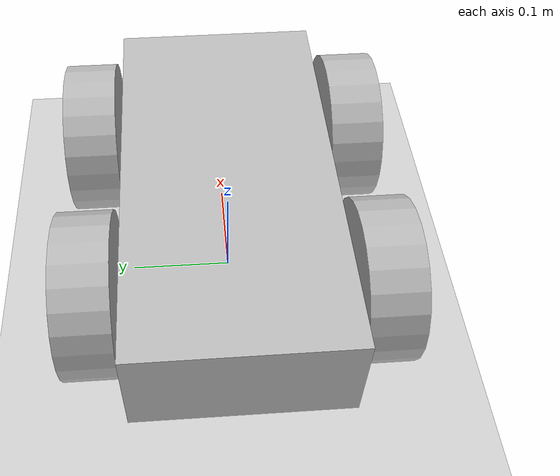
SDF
<?xml version="1.0" ?>
<sdf version="1.4">
<world name="mirobot">
	<light name='sun' type='directional'>
		<cast_shadows>1</cast_shadows>
		<pose>0 0 10 0 -0 0</pose>
		<diffuse>0.8 0.8 0.8 1</diffuse>
		<specular>0.2 0.2 0.2 1</specular>
		<attenuation>
			<range>1000</range>
			<constant>0.9</constant>
			<linear>0.01</linear>
			<quadratic>0.001</quadratic>
		</attenuation>
		<direction>-0.5 0.1 -0.9</direction>
	</light>

	<!-- Ground Plane -->
	<include>
		<uri>model://ground_plane</uri>
	</include>

	<!--    ROVER    -->
	<model name="rover">
		<static>false</static>

		<link name='chassis'>
			<pose>0 0 .1 0 0 0</pose>

			<collision name='collision'>
				<geometry>
					<box>
						<size>.4 .2 .1</size>
					</box>
				</geometry>
			</collision>

			<visual name='visual'>
				<geometry>
					<box>
						<size>.4 .2 .1</size>
					</box>
				</geometry>
			</visual>

			<sensor name='my_contact' type='contact'>
				<contact>
					<collision>collision</collision>
				</contact>
			</sensor>
		</link>

		<link name="front_left_wheel">
			<pose>0.1 0.13 0.1 0 1.5707 1.5707</pose>
			<collision name="collision">
				<geometry>
					<cylinder>
						<radius>.075</radius>
						<length>.05</length>
					</cylinder>
				</geometry>
			</collision>
			<visual name="visual">
				<geometry>
					<cylinder>
						<radius>.075</radius>
						<length>.05</length>
					</cylinder>
				</geometry>
			</visual>
		</link>

		<link name="front_right_wheel">
			<pose>0.1 -0.13 0.1 0 1.5707 1.5707</pose>
			<collision name="collision">
				<geometry>
					<cylinder>
						<radius>.075</radius>
						<length>.05</length>
					</cylinder>
				</geometry>
			</collision>
			<visual name="visual">
				<geometry>
					<cylinder>
						<radius>.075</radius>
						<length>.05</length>
					</cylinder>
				</geometry>
			</visual>
		</link>

		<link name="back_left_wheel">
			<pose>-0.1 0.13 0.1 0 1.5707 1.5707</pose>
			<collision name="collision">
				<geometry>
					<cylinder>
						<radius>.075</radius>
						<length>.05</length>
					</cylinder>
				</geometry>
			</collision>
			<visual name="visual">
				<geometry>
					<cylinder>
						<radius>.075</radius>
						<length>.05</length>
					</cylinder>
				</geometry>
			</visual>
		</link>

		<link name="back_right_wheel">
			<pose>-0.1 -0.13 0.1 0 1.5707 1.5707</pose>
			<collision name="collision">
				<geometry>
					<cylinder>
						<radius>.075</radius>
						<length>.05</length>
					</cylinder>
				</geometry>
			</collision>
			<visual name="visual">
				<geometry>
					<cylinder>
						<radius>.075</radius>
						<length>.05</length>
					</cylinder>
				</geometry>
			</visual>
		</link>

		<joint type="revolute" name="front_left_wheel_hinge">
			<pose>0 0 -0.03 0 0 0</pose>
			<child>front_left_wheel</child>
			<parent>chassis</parent>
			<axis>
				<xyz>0 1 0</xyz>
			</axis>
		</joint>

		<joint type="revolute" name="front_right_wheel_hinge">
			<pose>0 0 0.03 0 0 0</pose>
			<child>front_right_wheel</child>
			<parent>chassis</parent>
			<axis>
				<xyz>0 1 0</xyz>
			</axis>
		</joint>

		<joint type="revolute" name="back_left_wheel_hinge">
			<pose>0 0 -0.03 0 0 0</pose>
			<child>back_left_wheel</child>
			<parent>chassis</parent>
			<axis>
				<xyz>0 1 0</xyz>
			</axis>
		</joint>

		<joint type="revolute" name="back_right_wheel_hinge">
			<pose>0 0 0.03 0 0 0</pose>
			<child>back_right_wheel</child>
			<parent>chassis</parent>
			<axis>
				<xyz>0 1 0</xyz>
			</axis>
		</joint>
    </model>
</world>
</sdf>
